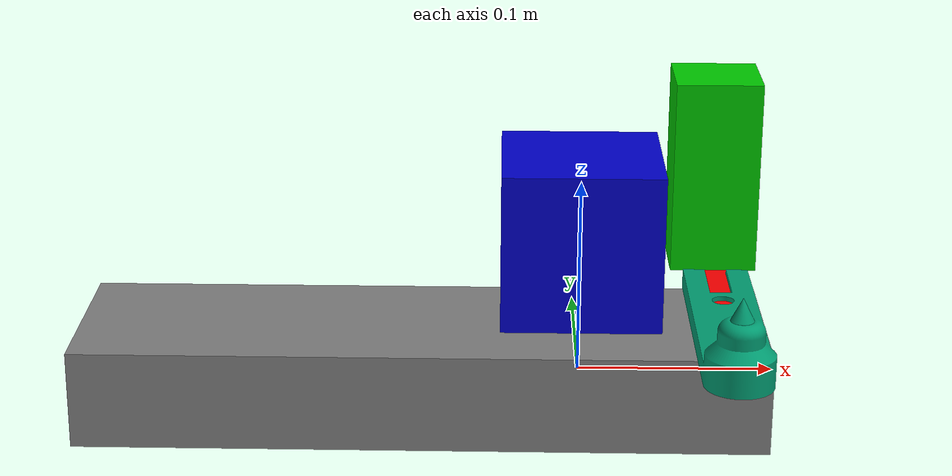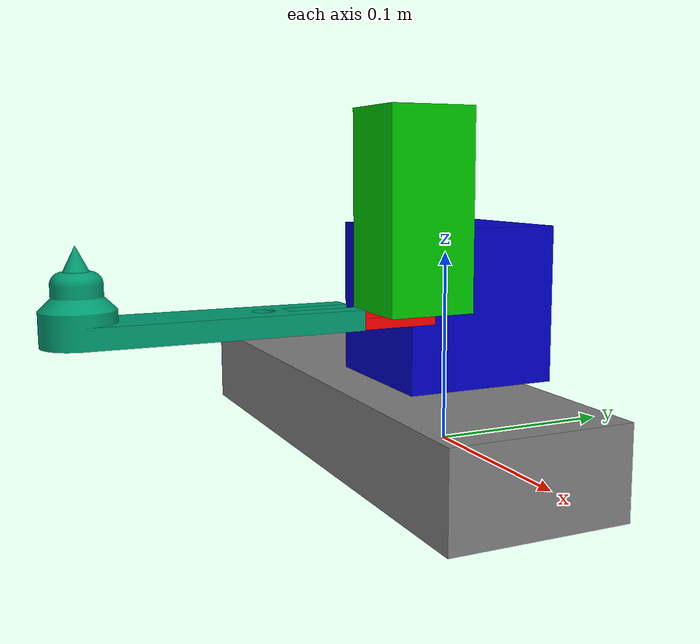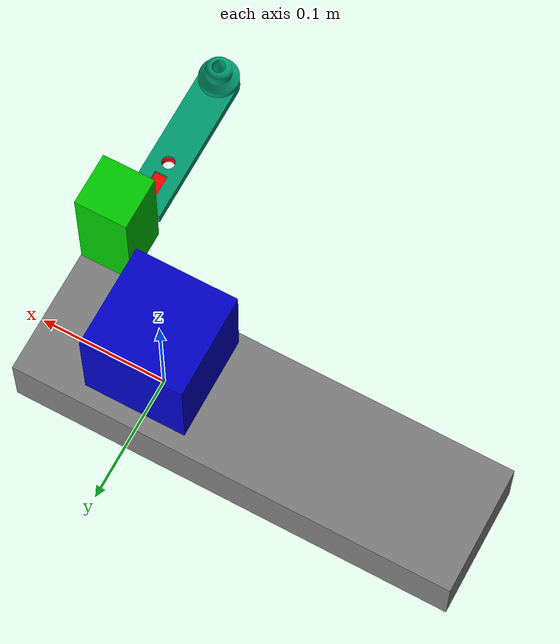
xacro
<?xml version="1.0"?>
<robot name="two_axis_gantry">

  <!-- ================= BASE LINK ================= -->
  <!-- A stationary base to mount the robot -->
  <link name="gantry_base_link">
    <visual>
      <origin xyz="-0.08 0 0" rpy="0 0 0" />
      <geometry>
        <box size="0.35 0.1 0.05" />
      </geometry>
      <material name="gray">
        <color rgba="0.5 0.5 0.5 1" />
      </material>
    </visual>
  </link>

  <!-- ================= LINK 1 (X-Axis Carriage) ================= -->
  <link name="x_carriage">
    <visual>
      <origin xyz="0 0 0.05" rpy="0 0 0" />
      <geometry>
        <box size="0.08 0.08 0.08" />
      </geometry>
      <material name="blue">
        <color rgba="0 0 0.8 1" />
      </material>
    </visual>
  </link>
  <link name='working_tip'>
    <visual>
      <origin xyz="0.0 0.0 0.0" rpy="0.0 3.14 0.0" />
      <geometry>
        <mesh
          filename="package://motomini/meshes/gantry/gantry-tool.stl"
          scale="0.001 0.001 0.001" />
      </geometry>
    </visual>
  </link>
  <!-- Joint 1: Prismatic movement along the X-axis (1 0 0) -->
  <!-- Limits: -0.28 meters (-280mm) to 0.0 meters -->
  <joint name="joint_x" type="prismatic">
    <parent link="gantry_base_link" />
    <child link="x_carriage" />
    <origin xyz="0 0 0.025" rpy="0 0 0" />
    <axis xyz="1 0 0" />
    <limit lower="-0.28" upper="0.0" effort="100.0" velocity="1.0" />
  </joint>

  <!-- ================= LINK 2 (Z-Axis Shaft) ================= -->
  <link name="z_shaft">
    <visual>
      <origin xyz="0 0 0.05" rpy="0 0 0" />
      <geometry>
        <box size="0.04 0.04 0.09" />
      </geometry>
      <material name="green">
        <color rgba="0 0.8 0 1" />
      </material>
    </visual>
  </link>

  <!-- Joint 2: Prismatic movement along the Z-axis (0 0 1) -->
  <!-- Limits: -0.06 meters (-60mm) to 0.0 meters -->
  <joint name="joint_z" type="prismatic">
    <parent link="x_carriage" />
    <child link="z_shaft" />
    <origin xyz="0.06 -0.05 0.05" rpy="0 0 0" />
    <axis xyz="0 0 1" />
    <limit lower="-0.06" upper="0.0" effort="100.0" velocity="1.0" />
  </joint>

  <!-- ================= TOOL LINK ================= -->
  <!-- A thin cylinder acting as a "line" pointing in the Y direction -->
  <link name="gantry_tool_link">
    <visual>
      <origin xyz="0 -0.07 0.0" rpy="0 0 3.14" />
      <geometry>
        <mesh
          filename="package://motomini/meshes/gantry/gantry-hand.stl"
          scale="0.001 0.001 0.001" />
      </geometry>
      <material name="red">
        <color rgba="1 0 0 1" />
      </material>
    </visual>
  </link>
  <joint name="working_tip_tool" type="fixed">
    <parent link="gantry_tool_link" />
    <child link="working_tip" />
    <origin xyz="0.0 -0.1451 0.045" rpy="0.0 0.0 3.14" />

  </joint>
  <!-- Fixed joint attaching the tool to the bottom of the Z-shaft -->
  <joint name="gantry_tool_joint" type="fixed">
    <parent link="z_shaft" />
    <child link="gantry_tool_link" />
    <origin xyz="0 0 0" rpy="0 0 0" />
  </joint>

  <!-- ================= ROS 2 CONTROL ================= -->
  <!-- This defines the interfaces for the controller manager to hook into -->
  <ros2_control name="HardwareSystem" type="system">
    <hardware>
      <!-- We use a mock component here so it can be tested without physical hardware -->
      <plugin>mock_components/GenericSystem</plugin>
    </hardware>

    <joint name="joint_x">
      <command_interface name="position" />
      <state_interface name="position" />
      <state_interface name="velocity" />
    </joint>

    <joint name="joint_z">
      <command_interface name="position" />
      <state_interface name="position" />
      <state_interface name="velocity" />
    </joint>
  </ros2_control>

</robot>
